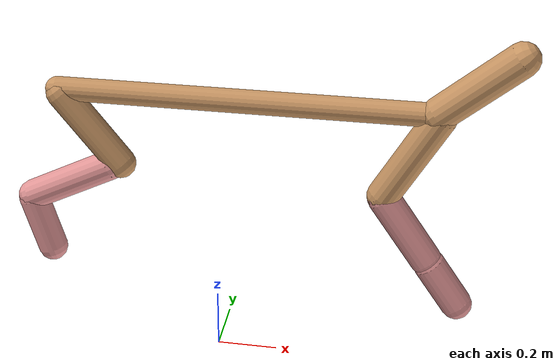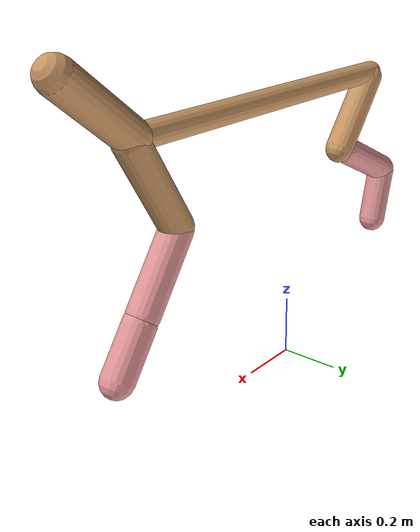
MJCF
<mujoco model="cheetah">
  <compiler angle="radian" coordinate="local" inertiafromgeom="true" settotalmass="14" />
  <default>
    <joint armature=".1" damping=".01" limited="true" solimplimit="0 .8 .03" solreflimit=".02 1" stiffness="8" />
    <geom conaffinity="0" condim="3" contype="1" friction="0.8 .1 .1" rgba="0.8 0.6 .4 1" solimp="0.0 0.8 0.01" solref="0.02 1" />
    <motor ctrllimited="true" ctrlrange="-1 1" />
  </default>
  <size nstack="300000" nuser_geom="1" />
  <option gravity="0 0 -9.81" timestep="0.01" />
  <worldbody>
    <body name="torso" pos="0.0 0.0 0.9216439730884121">
      <joint armature="0" axis="1 0 0" damping="0" limited="false" name="ignorex" pos="0 0 0" stiffness="0" type="slide" />
      <joint armature="0" axis="0 0 1" damping="0" limited="false" name="ignorez" pos="0 0 0" stiffness="0" type="slide" />
      <joint armature="0" axis="0 1 0" damping="0" limited="false" name="ignorey" pos="0 0 0" stiffness="0" type="hinge" />
      <geom fromto="-0.5 0.0 0.0 0.702292486993193 0.0 0.0" name="torso" size="0.03772963101403225" type="capsule" />
      <geom axisangle="0 1 0 .87" name="head" pos="0.802292486993193 0.0 0.1" size="0.05365676497284697 0.15" type="capsule" />

      <body name="bthigh" pos="-.5 0 0">
        <joint axis="0 1 0" damping="6" name="bthigh" pos="0 0 0" range="-.52 1.05" stiffness="240" type="hinge" />
        <geom axisangle="0 1 0 -3.8" name="bthigh" pos="0.10142402676120743 0.0 -0.13185123478956964" size="0.04887133313465468 0.147335577543724" type="capsule" />
        <body name="bshin" pos="0.16284805352241485 0.0 -0.2537024695791393">
          <joint axis="0 1 0" damping="4.5" name="bshin" pos="0 0 0" range="-.785 .785" stiffness="180" type="hinge" />
          <geom axisangle="0 1 0 -2.03" name="bshin" pos="-0.1421610386846161 0.0 -0.07108051934230805" rgba="0.9 0.6 0.6 1" size="0.04887133313465468 0.15241611470040414" type="capsule" />
          <body name="bfoot" pos="-0.2843220773692322 0.0 -0.1421610386846161">
            <joint axis="0 1 0" damping="3" name="bfoot" pos="0 0 0" range="-.4 .785" stiffness="120" type="hinge" />
            <geom axisangle="0 1 0 -.27" name="bfoot" pos="0.030447370277741175 0.0 -0.09844649723136314" rgba="0.9 0.6 0.6 1" size="0.04887133313465468 0.0955140985455866" type="capsule" />
            <inertial mass="10" />
          </body>
        </body>
      </body>
      <body name="fthigh" pos="0.702292486993193 0.0 0.0">
        <joint axis="0 1 0" damping="4.5" name="fthigh" pos="0 0 0" range="-1.5 0.8" stiffness="180" type="hinge" />
        <geom axisangle="0 1 0 .52" name="fthigh" pos="-0.08553706779375704 0.0 -0.14663497336072634" size="0.051286604684103676 0.1638354062978649" type="capsule" />
        <body name="fshin" pos="-0.17107413558751408 0.0 -0.2932699467214527">
          <joint axis="0 1 0" damping="3" name="fshin" pos="0 0 0" range="-1.2 1.1" stiffness="120" type="hinge" />
          <geom axisangle="0 1 0 -.6" name="fshin" pos="0.07938877402859691 0.0 -0.10992291788574955" rgba="0.9 0.6 0.6 1" size="0.051286604684103676 0.13057558697423816" type="capsule" />
          <body name="ffoot" pos="0.15877754805719382 0.0 -0.2198458357714991">
            <joint axis="0 1 0" damping="1.5" name="ffoot" pos="0 0 0" range="-3.1 -0.3" stiffness="60" type="hinge" />
            <geom axisangle="0 1 0 -.6" name="ffoot" pos="0.05377604212463499 0.0 -0.08365162108276555" rgba="0.9 0.6 0.6 1" size="0.051286604684103676 0.08622916120940258" type="capsule" />
            <inertial mass="10" />
          </body>
        </body>
      </body>
    </body>
  </worldbody>
  <actuator>
    <motor gear="120" joint="bthigh" name="bthigh" />
    <motor gear="90" joint="bshin" name="bshin" />
    <motor gear="60" joint="bfoot" name="bfoot" />
    <motor gear="120" joint="fthigh" name="fthigh" />
    <motor gear="60" joint="fshin" name="fshin" />
    <motor gear="30" joint="ffoot" name="ffoot" />
  </actuator>
</mujoco>
